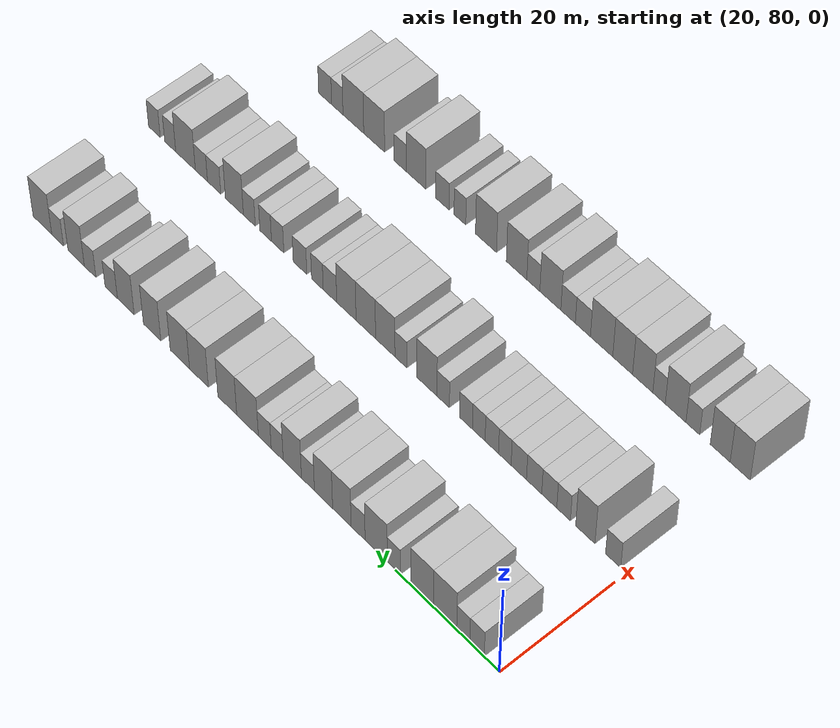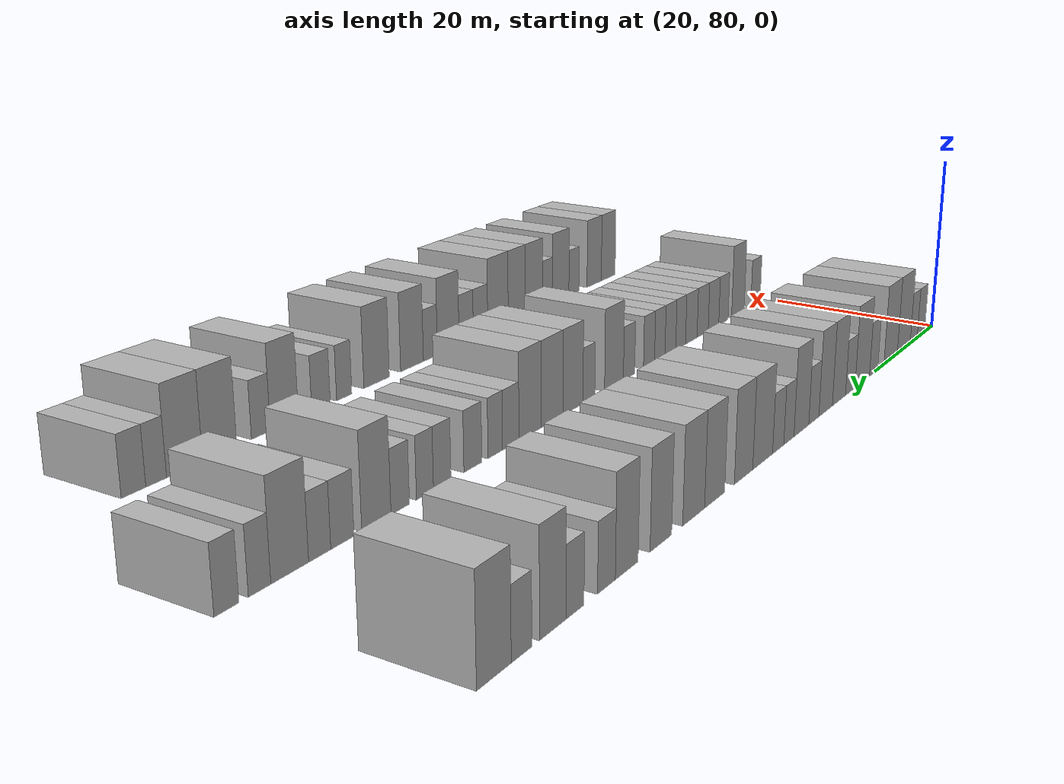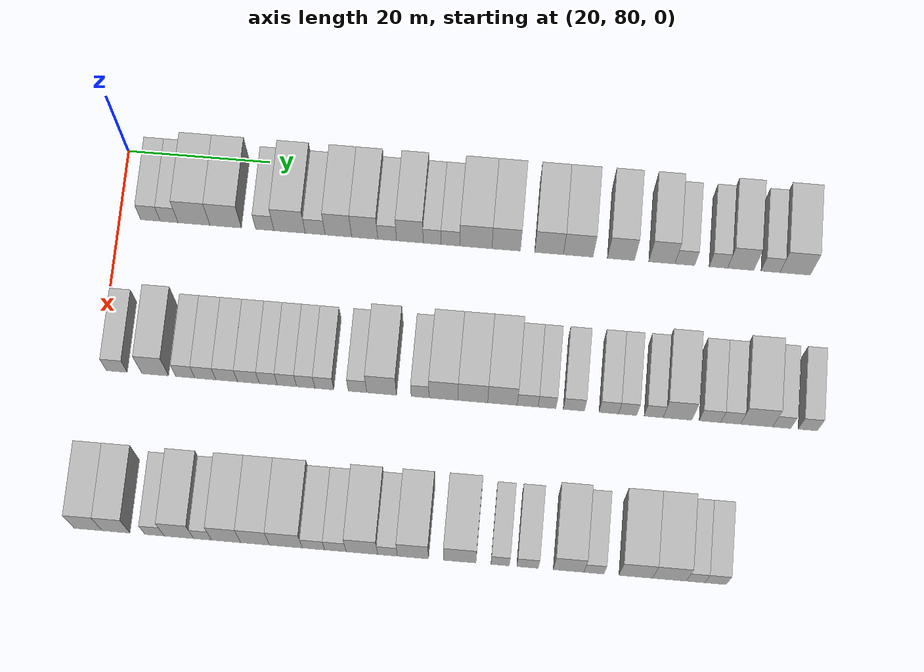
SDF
<sdf version="1.6">
 <world name="default">
  <model name="building_110">
   <static>1</static>
   <pose>25.0000 84.3498 0 0.000000 0.000000 0.000000</pose>
   <link name="link">
    <pose>0 0 3.00 0 0 0</pose>
    <collision name="collision"><geometry><box><size>10.0000 2.7486 6.0000</size></box></geometry></collision>
    <visual name="visual">
     <cast_shadows>0</cast_shadows>
     <geometry><box><size>10.0000 2.7486 6.0000</size></box></geometry>
     <material>
      <script>
       <uri>model://HANNAS_wall/materials/scripts</uri>
       <uri>model://HANNAS_wall/materials/textures</uri>
       <name>vrc/HANNAS_wall</name>
      </script>
     </material>
    </visual>
   </link>
  </model>
  <model name="building_111">
   <static>1</static>
   <pose>25.0000 86.9728 0 0.000000 0.000000 0.000000</pose>
   <link name="link">
    <pose>0 0 3.00 0 0 0</pose>
    <collision name="collision"><geometry><box><size>10.0000 2.4974 6.0000</size></box></geometry></collision>
    <visual name="visual">
     <cast_shadows>0</cast_shadows>
     <geometry><box><size>10.0000 2.4974 6.0000</size></box></geometry>
     <material>
      <script>
       <uri>model://HANNAS_wall/materials/scripts</uri>
       <uri>model://HANNAS_wall/materials/textures</uri>
       <name>vrc/HANNAS_wall</name>
      </script>
     </material>
    </visual>
   </link>
  </model>
  <model name="building_112">
   <static>1</static>
   <pose>25.0000 90.4546 0 0.000000 0.000000 0.000000</pose>
   <link name="link">
    <pose>0 0 4.50 0 0 0</pose>
    <collision name="collision"><geometry><box><size>10.0000 4.4662 9.0000</size></box></geometry></collision>
    <visual name="visual">
     <cast_shadows>0</cast_shadows>
     <geometry><box><size>10.0000 4.4662 9.0000</size></box></geometry>
     <material>
      <script>
       <uri>model://HANNAS_wall/materials/scripts</uri>
       <uri>model://HANNAS_wall/materials/textures</uri>
       <name>vrc/HANNAS_wall</name>
      </script>
     </material>
    </visual>
   </link>
  </model>
  <model name="building_113">
   <static>1</static>
   <pose>25.0000 94.8937 0 0.000000 0.000000 0.000000</pose>
   <link name="link">
    <pose>0 0 4.50 0 0 0</pose>
    <collision name="collision"><geometry><box><size>10.0000 4.4118 9.0000</size></box></geometry></collision>
    <visual name="visual">
     <cast_shadows>0</cast_shadows>
     <geometry><box><size>10.0000 4.4118 9.0000</size></box></geometry>
     <material>
      <script>
       <uri>model://HANNAS_wall/materials/scripts</uri>
       <uri>model://HANNAS_wall/materials/textures</uri>
       <name>vrc/HANNAS_wall</name>
      </script>
     </material>
    </visual>
   </link>
  </model>
  <model name="building_114">
   <static>1</static>
   <pose>25.0000 100.3810 0 0.000000 0.000000 0.000000</pose>
   <link name="link">
    <pose>0 0 3.00 0 0 0</pose>
    <collision name="collision"><geometry><box><size>10.0000 2.5627 6.0000</size></box></geometry></collision>
    <visual name="visual">
     <cast_shadows>0</cast_shadows>
     <geometry><box><size>10.0000 2.5627 6.0000</size></box></geometry>
     <material>
      <script>
       <uri>model://HANNAS_wall/materials/scripts</uri>
       <uri>model://HANNAS_wall/materials/textures</uri>
       <name>vrc/HANNAS_wall</name>
      </script>
     </material>
    </visual>
   </link>
  </model>
  <model name="building_115">
   <static>1</static>
   <pose>25.0000 103.8504 0 0.000000 0.000000 0.000000</pose>
   <link name="link">
    <pose>0 0 4.50 0 0 0</pose>
    <collision name="collision"><geometry><box><size>10.0000 4.3762 9.0000</size></box></geometry></collision>
    <visual name="visual">
     <cast_shadows>0</cast_shadows>
     <geometry><box><size>10.0000 4.3762 9.0000</size></box></geometry>
     <material>
      <script>
       <uri>model://HANNAS_wall/materials/scripts</uri>
       <uri>model://HANNAS_wall/materials/textures</uri>
       <name>vrc/HANNAS_wall</name>
      </script>
     </material>
    </visual>
   </link>
  </model>
  <model name="building_116">
   <static>1</static>
   <pose>25.0000 107.4264 0 0.000000 0.000000 0.000000</pose>
   <link name="link">
    <pose>0 0 3.00 0 0 0</pose>
    <collision name="collision"><geometry><box><size>10.0000 2.7757 6.0000</size></box></geometry></collision>
    <visual name="visual">
     <cast_shadows>0</cast_shadows>
     <geometry><box><size>10.0000 2.7757 6.0000</size></box></geometry>
     <material>
      <script>
       <uri>model://HANNAS_wall/materials/scripts</uri>
       <uri>model://HANNAS_wall/materials/textures</uri>
       <name>vrc/HANNAS_wall</name>
      </script>
     </material>
    </visual>
   </link>
  </model>
  <model name="building_117">
   <static>1</static>
   <pose>25.0000 110.6627 0 0.000000 0.000000 0.000000</pose>
   <link name="link">
    <pose>0 0 4.50 0 0 0</pose>
    <collision name="collision"><geometry><box><size>10.0000 3.6969 9.0000</size></box></geometry></collision>
    <visual name="visual">
     <cast_shadows>0</cast_shadows>
     <geometry><box><size>10.0000 3.6969 9.0000</size></box></geometry>
     <material>
      <script>
       <uri>model://HANNAS_wall/materials/scripts</uri>
       <uri>model://HANNAS_wall/materials/textures</uri>
       <name>vrc/HANNAS_wall</name>
      </script>
     </material>
    </visual>
   </link>
  </model>
  <model name="building_118">
   <static>1</static>
   <pose>25.0000 114.3359 0 0.000000 0.000000 0.000000</pose>
   <link name="link">
    <pose>0 0 4.50 0 0 0</pose>
    <collision name="collision"><geometry><box><size>10.0000 3.6496 9.0000</size></box></geometry></collision>
    <visual name="visual">
     <cast_shadows>0</cast_shadows>
     <geometry><box><size>10.0000 3.6496 9.0000</size></box></geometry>
     <material>
      <script>
       <uri>model://HANNAS_wall/materials/scripts</uri>
       <uri>model://HANNAS_wall/materials/textures</uri>
       <name>vrc/HANNAS_wall</name>
      </script>
     </material>
    </visual>
   </link>
  </model>
  <model name="building_119">
   <static>1</static>
   <pose>25.0000 117.4732 0 0.000000 0.000000 0.000000</pose>
   <link name="link">
    <pose>0 0 3.00 0 0 0</pose>
    <collision name="collision"><geometry><box><size>10.0000 2.6251 6.0000</size></box></geometry></collision>
    <visual name="visual">
     <cast_shadows>0</cast_shadows>
     <geometry><box><size>10.0000 2.6251 6.0000</size></box></geometry>
     <material>
      <script>
       <uri>model://HANNAS_wall/materials/scripts</uri>
       <uri>model://HANNAS_wall/materials/textures</uri>
       <name>vrc/HANNAS_wall</name>
      </script>
     </material>
    </visual>
   </link>
  </model>
  <model name="building_120">
   <static>1</static>
   <pose>25.0000 120.6434 0 0.000000 0.000000 0.000000</pose>
   <link name="link">
    <pose>0 0 4.50 0 0 0</pose>
    <collision name="collision"><geometry><box><size>10.0000 3.7152 9.0000</size></box></geometry></collision>
    <visual name="visual">
     <cast_shadows>0</cast_shadows>
     <geometry><box><size>10.0000 3.7152 9.0000</size></box></geometry>
     <material>
      <script>
       <uri>model://HANNAS_wall/materials/scripts</uri>
       <uri>model://HANNAS_wall/materials/textures</uri>
       <name>vrc/HANNAS_wall</name>
      </script>
     </material>
    </visual>
   </link>
  </model>
  <model name="building_121">
   <static>1</static>
   <pose>25.0000 123.7357 0 0.000000 0.000000 0.000000</pose>
   <link name="link">
    <pose>0 0 3.00 0 0 0</pose>
    <collision name="collision"><geometry><box><size>10.0000 2.4694 6.0000</size></box></geometry></collision>
    <visual name="visual">
     <cast_shadows>0</cast_shadows>
     <geometry><box><size>10.0000 2.4694 6.0000</size></box></geometry>
     <material>
      <script>
       <uri>model://HANNAS_wall/materials/scripts</uri>
       <uri>model://HANNAS_wall/materials/textures</uri>
       <name>vrc/HANNAS_wall</name>
      </script>
     </material>
    </visual>
   </link>
  </model>
  <model name="building_122">
   <static>1</static>
   <pose>25.0000 126.2883 0 0.000000 0.000000 0.000000</pose>
   <link name="link">
    <pose>0 0 3.00 0 0 0</pose>
    <collision name="collision"><geometry><box><size>10.0000 2.6357 6.0000</size></box></geometry></collision>
    <visual name="visual">
     <cast_shadows>0</cast_shadows>
     <geometry><box><size>10.0000 2.6357 6.0000</size></box></geometry>
     <material>
      <script>
       <uri>model://HANNAS_wall/materials/scripts</uri>
       <uri>model://HANNAS_wall/materials/textures</uri>
       <name>vrc/HANNAS_wall</name>
      </script>
     </material>
    </visual>
   </link>
  </model>
  <model name="building_123">
   <static>1</static>
   <pose>25.0000 129.8444 0 0.000000 0.000000 0.000000</pose>
   <link name="link">
    <pose>0 0 4.50 0 0 0</pose>
    <collision name="collision"><geometry><box><size>10.0000 4.4765 9.0000</size></box></geometry></collision>
    <visual name="visual">
     <cast_shadows>0</cast_shadows>
     <geometry><box><size>10.0000 4.4765 9.0000</size></box></geometry>
     <material>
      <script>
       <uri>model://HANNAS_wall/materials/scripts</uri>
       <uri>model://HANNAS_wall/materials/textures</uri>
       <name>vrc/HANNAS_wall</name>
      </script>
     </material>
    </visual>
   </link>
  </model>
  <model name="building_124">
   <static>1</static>
   <pose>25.0000 134.0527 0 0.000000 0.000000 0.000000</pose>
   <link name="link">
    <pose>0 0 4.50 0 0 0</pose>
    <collision name="collision"><geometry><box><size>10.0000 3.9402 9.0000</size></box></geometry></collision>
    <visual name="visual">
     <cast_shadows>0</cast_shadows>
     <geometry><box><size>10.0000 3.9402 9.0000</size></box></geometry>
     <material>
      <script>
       <uri>model://HANNAS_wall/materials/scripts</uri>
       <uri>model://HANNAS_wall/materials/textures</uri>
       <name>vrc/HANNAS_wall</name>
      </script>
     </material>
    </visual>
   </link>
  </model>
  <model name="building_125">
   <static>1</static>
   <pose>25.0000 140.0125 0 0.000000 0.000000 0.000000</pose>
   <link name="link">
    <pose>0 0 4.50 0 0 0</pose>
    <collision name="collision"><geometry><box><size>10.0000 3.9793 9.0000</size></box></geometry></collision>
    <visual name="visual">
     <cast_shadows>0</cast_shadows>
     <geometry><box><size>10.0000 3.9793 9.0000</size></box></geometry>
     <material>
      <script>
       <uri>model://HANNAS_wall/materials/scripts</uri>
       <uri>model://HANNAS_wall/materials/textures</uri>
       <name>vrc/HANNAS_wall</name>
      </script>
     </material>
    </visual>
   </link>
  </model>
  <model name="building_126">
   <static>1</static>
   <pose>25.0000 144.0633 0 0.000000 0.000000 0.000000</pose>
   <link name="link">
    <pose>0 0 4.50 0 0 0</pose>
    <collision name="collision"><geometry><box><size>10.0000 4.1224 9.0000</size></box></geometry></collision>
    <visual name="visual">
     <cast_shadows>0</cast_shadows>
     <geometry><box><size>10.0000 4.1224 9.0000</size></box></geometry>
     <material>
      <script>
       <uri>model://HANNAS_wall/materials/scripts</uri>
       <uri>model://HANNAS_wall/materials/textures</uri>
       <name>vrc/HANNAS_wall</name>
      </script>
     </material>
    </visual>
   </link>
  </model>
  <model name="building_127">
   <static>1</static>
   <pose>25.0000 149.9995 0 0.000000 0.000000 0.000000</pose>
   <link name="link">
    <pose>0 0 4.50 0 0 0</pose>
    <collision name="collision"><geometry><box><size>10.0000 3.7500 9.0000</size></box></geometry></collision>
    <visual name="visual">
     <cast_shadows>0</cast_shadows>
     <geometry><box><size>10.0000 3.7500 9.0000</size></box></geometry>
     <material>
      <script>
       <uri>model://HANNAS_wall/materials/scripts</uri>
       <uri>model://HANNAS_wall/materials/textures</uri>
       <name>vrc/HANNAS_wall</name>
      </script>
     </material>
    </visual>
   </link>
  </model>
  <model name="building_128">
   <static>1</static>
   <pose>25.0000 155.6992 0 0.000000 0.000000 0.000000</pose>
   <link name="link">
    <pose>0 0 4.50 0 0 0</pose>
    <collision name="collision"><geometry><box><size>10.0000 3.6494 9.0000</size></box></geometry></collision>
    <visual name="visual">
     <cast_shadows>0</cast_shadows>
     <geometry><box><size>10.0000 3.6494 9.0000</size></box></geometry>
     <material>
      <script>
       <uri>model://HANNAS_wall/materials/scripts</uri>
       <uri>model://HANNAS_wall/materials/textures</uri>
       <name>vrc/HANNAS_wall</name>
      </script>
     </material>
    </visual>
   </link>
  </model>
  <model name="building_129">
   <static>1</static>
   <pose>25.0000 158.8847 0 0.000000 0.000000 0.000000</pose>
   <link name="link">
    <pose>0 0 3.00 0 0 0</pose>
    <collision name="collision"><geometry><box><size>10.0000 2.7216 6.0000</size></box></geometry></collision>
    <visual name="visual">
     <cast_shadows>0</cast_shadows>
     <geometry><box><size>10.0000 2.7216 6.0000</size></box></geometry>
     <material>
      <script>
       <uri>model://HANNAS_wall/materials/scripts</uri>
       <uri>model://HANNAS_wall/materials/textures</uri>
       <name>vrc/HANNAS_wall</name>
      </script>
     </material>
    </visual>
   </link>
  </model>
  <model name="building_130">
   <static>1</static>
   <pose>25.0000 163.5265 0 0.000000 0.000000 0.000000</pose>
   <link name="link">
    <pose>0 0 3.00 0 0 0</pose>
    <collision name="collision"><geometry><box><size>10.0000 2.5621 6.0000</size></box></geometry></collision>
    <visual name="visual">
     <cast_shadows>0</cast_shadows>
     <geometry><box><size>10.0000 2.5621 6.0000</size></box></geometry>
     <material>
      <script>
       <uri>model://HANNAS_wall/materials/scripts</uri>
       <uri>model://HANNAS_wall/materials/textures</uri>
       <name>vrc/HANNAS_wall</name>
      </script>
     </material>
    </visual>
   </link>
  </model>
  <model name="building_131">
   <static>1</static>
   <pose>25.0000 166.6213 0 0.000000 0.000000 0.000000</pose>
   <link name="link">
    <pose>0 0 4.50 0 0 0</pose>
    <collision name="collision"><geometry><box><size>10.0000 3.6275 9.0000</size></box></geometry></collision>
    <visual name="visual">
     <cast_shadows>0</cast_shadows>
     <geometry><box><size>10.0000 3.6275 9.0000</size></box></geometry>
     <material>
      <script>
       <uri>model://HANNAS_wall/materials/scripts</uri>
       <uri>model://HANNAS_wall/materials/textures</uri>
       <name>vrc/HANNAS_wall</name>
      </script>
     </material>
    </visual>
   </link>
  </model>
  <model name="building_132">
   <static>1</static>
   <pose>25.0000 170.7462 0 0.000000 0.000000 0.000000</pose>
   <link name="link">
    <pose>0 0 3.00 0 0 0</pose>
    <collision name="collision"><geometry><box><size>10.0000 2.6222 6.0000</size></box></geometry></collision>
    <visual name="visual">
     <cast_shadows>0</cast_shadows>
     <geometry><box><size>10.0000 2.6222 6.0000</size></box></geometry>
     <material>
      <script>
       <uri>model://HANNAS_wall/materials/scripts</uri>
       <uri>model://HANNAS_wall/materials/textures</uri>
       <name>vrc/HANNAS_wall</name>
      </script>
     </material>
    </visual>
   </link>
  </model>
  <model name="building_133">
   <static>1</static>
   <pose>25.0000 174.1578 0 0.000000 0.000000 0.000000</pose>
   <link name="link">
    <pose>0 0 4.50 0 0 0</pose>
    <collision name="collision"><geometry><box><size>10.0000 4.2010 9.0000</size></box></geometry></collision>
    <visual name="visual">
     <cast_shadows>0</cast_shadows>
     <geometry><box><size>10.0000 4.2010 9.0000</size></box></geometry>
     <material>
      <script>
       <uri>model://HANNAS_wall/materials/scripts</uri>
       <uri>model://HANNAS_wall/materials/textures</uri>
       <name>vrc/HANNAS_wall</name>
      </script>
     </material>
    </visual>
   </link>
  </model>
  <model name="building_282">
   <static>1</static>
   <pose>47.0000 82.5187 0 0.000000 0.000000 0.000000</pose>
   <link name="link">
    <pose>0 0 3.00 0 0 0</pose>
    <collision name="collision"><geometry><box><size>10.0000 2.8569 6.0000</size></box></geometry></collision>
    <visual name="visual">
     <cast_shadows>0</cast_shadows>
     <geometry><box><size>10.0000 2.8569 6.0000</size></box></geometry>
     <material>
      <script>
       <uri>model://HANNAS_wall/materials/scripts</uri>
       <uri>model://HANNAS_wall/materials/textures</uri>
       <name>vrc/HANNAS_wall</name>
      </script>
     </material>
    </visual>
   </link>
  </model>
  <model name="building_283">
   <static>1</static>
   <pose>47.0000 87.7816 0 0.000000 0.000000 0.000000</pose>
   <link name="link">
    <pose>0 0 4.50 0 0 0</pose>
    <collision name="collision"><geometry><box><size>10.0000 3.6690 9.0000</size></box></geometry></collision>
    <visual name="visual">
     <cast_shadows>0</cast_shadows>
     <geometry><box><size>10.0000 3.6690 9.0000</size></box></geometry>
     <material>
      <script>
       <uri>model://HANNAS_wall/materials/scripts</uri>
       <uri>model://HANNAS_wall/materials/textures</uri>
       <name>vrc/HANNAS_wall</name>
      </script>
     </material>
    </visual>
   </link>
  </model>
  <model name="building_284">
   <static>1</static>
   <pose>47.0000 91.9231 0 0.000000 0.000000 0.000000</pose>
   <link name="link">
    <pose>0 0 3.00 0 0 0</pose>
    <collision name="collision"><geometry><box><size>10.0000 2.6141 6.0000</size></box></geometry></collision>
    <visual name="visual">
     <cast_shadows>0</cast_shadows>
     <geometry><box><size>10.0000 2.6141 6.0000</size></box></geometry>
     <material>
      <script>
       <uri>model://HANNAS_wall/materials/scripts</uri>
       <uri>model://HANNAS_wall/materials/textures</uri>
       <name>vrc/HANNAS_wall</name>
      </script>
     </material>
    </visual>
   </link>
  </model>
  <model name="building_285">
   <static>1</static>
   <pose>47.0000 94.6770 0 0.000000 0.000000 0.000000</pose>
   <link name="link">
    <pose>0 0 3.00 0 0 0</pose>
    <collision name="collision"><geometry><box><size>10.0000 2.8936 6.0000</size></box></geometry></collision>
    <visual name="visual">
     <cast_shadows>0</cast_shadows>
     <geometry><box><size>10.0000 2.8936 6.0000</size></box></geometry>
     <material>
      <script>
       <uri>model://HANNAS_wall/materials/scripts</uri>
       <uri>model://HANNAS_wall/materials/textures</uri>
       <name>vrc/HANNAS_wall</name>
      </script>
     </material>
    </visual>
   </link>
  </model>
  <model name="building_286">
   <static>1</static>
   <pose>47.0000 97.6054 0 0.000000 0.000000 0.000000</pose>
   <link name="link">
    <pose>0 0 3.00 0 0 0</pose>
    <collision name="collision"><geometry><box><size>10.0000 2.9633 6.0000</size></box></geometry></collision>
    <visual name="visual">
     <cast_shadows>0</cast_shadows>
     <geometry><box><size>10.0000 2.9633 6.0000</size></box></geometry>
     <material>
      <script>
       <uri>model://HANNAS_wall/materials/scripts</uri>
       <uri>model://HANNAS_wall/materials/textures</uri>
       <name>vrc/HANNAS_wall</name>
      </script>
     </material>
    </visual>
   </link>
  </model>
  <model name="building_287">
   <static>1</static>
   <pose>47.0000 100.5819 0 0.000000 0.000000 0.000000</pose>
   <link name="link">
    <pose>0 0 3.00 0 0 0</pose>
    <collision name="collision"><geometry><box><size>10.0000 2.9896 6.0000</size></box></geometry></collision>
    <visual name="visual">
     <cast_shadows>0</cast_shadows>
     <geometry><box><size>10.0000 2.9896 6.0000</size></box></geometry>
     <material>
      <script>
       <uri>model://HANNAS_wall/materials/scripts</uri>
       <uri>model://HANNAS_wall/materials/textures</uri>
       <name>vrc/HANNAS_wall</name>
      </script>
     </material>
    </visual>
   </link>
  </model>
  <model name="building_288">
   <static>1</static>
   <pose>47.0000 103.3158 0 0.000000 0.000000 0.000000</pose>
   <link name="link">
    <pose>0 0 3.00 0 0 0</pose>
    <collision name="collision"><geometry><box><size>10.0000 2.4782 6.0000</size></box></geometry></collision>
    <visual name="visual">
     <cast_shadows>0</cast_shadows>
     <geometry><box><size>10.0000 2.4782 6.0000</size></box></geometry>
     <material>
      <script>
       <uri>model://HANNAS_wall/materials/scripts</uri>
       <uri>model://HANNAS_wall/materials/textures</uri>
       <name>vrc/HANNAS_wall</name>
      </script>
     </material>
    </visual>
   </link>
  </model>
  <model name="building_289">
   <static>1</static>
   <pose>47.0000 105.8739 0 0.000000 0.000000 0.000000</pose>
   <link name="link">
    <pose>0 0 3.00 0 0 0</pose>
    <collision name="collision"><geometry><box><size>10.0000 2.6379 6.0000</size></box></geometry></collision>
    <visual name="visual">
     <cast_shadows>0</cast_shadows>
     <geometry><box><size>10.0000 2.6379 6.0000</size></box></geometry>
     <material>
      <script>
       <uri>model://HANNAS_wall/materials/scripts</uri>
       <uri>model://HANNAS_wall/materials/textures</uri>
       <name>vrc/HANNAS_wall</name>
      </script>
     </material>
    </visual>
   </link>
  </model>
  <model name="building_290">
   <static>1</static>
   <pose>47.0000 108.4440 0 0.000000 0.000000 0.000000</pose>
   <link name="link">
    <pose>0 0 3.00 0 0 0</pose>
    <collision name="collision"><geometry><box><size>10.0000 2.5023 6.0000</size></box></geometry></collision>
    <visual name="visual">
     <cast_shadows>0</cast_shadows>
     <geometry><box><size>10.0000 2.5023 6.0000</size></box></geometry>
     <material>
      <script>
       <uri>model://HANNAS_wall/materials/scripts</uri>
       <uri>model://HANNAS_wall/materials/textures</uri>
       <name>vrc/HANNAS_wall</name>
      </script>
     </material>
    </visual>
   </link>
  </model>
  <model name="building_291">
   <static>1</static>
   <pose>47.0000 110.9871 0 0.000000 0.000000 0.000000</pose>
   <link name="link">
    <pose>0 0 3.00 0 0 0</pose>
    <collision name="collision"><geometry><box><size>10.0000 2.5840 6.0000</size></box></geometry></collision>
    <visual name="visual">
     <cast_shadows>0</cast_shadows>
     <geometry><box><size>10.0000 2.5840 6.0000</size></box></geometry>
     <material>
      <script>
       <uri>model://HANNAS_wall/materials/scripts</uri>
       <uri>model://HANNAS_wall/materials/textures</uri>
       <name>vrc/HANNAS_wall</name>
      </script>
     </material>
    </visual>
   </link>
  </model>
  <model name="building_292">
   <static>1</static>
   <pose>47.0000 115.5350 0 0.000000 0.000000 0.000000</pose>
   <link name="link">
    <pose>0 0 3.00 0 0 0</pose>
    <collision name="collision"><geometry><box><size>10.0000 2.5118 6.0000</size></box></geometry></collision>
    <visual name="visual">
     <cast_shadows>0</cast_shadows>
     <geometry><box><size>10.0000 2.5118 6.0000</size></box></geometry>
     <material>
      <script>
       <uri>model://HANNAS_wall/materials/scripts</uri>
       <uri>model://HANNAS_wall/materials/textures</uri>
       <name>vrc/HANNAS_wall</name>
      </script>
     </material>
    </visual>
   </link>
  </model>
  <model name="building_293">
   <static>1</static>
   <pose>47.0000 118.8220 0 0.000000 0.000000 0.000000</pose>
   <link name="link">
    <pose>0 0 4.50 0 0 0</pose>
    <collision name="collision"><geometry><box><size>10.0000 4.0622 9.0000</size></box></geometry></collision>
    <visual name="visual">
     <cast_shadows>0</cast_shadows>
     <geometry><box><size>10.0000 4.0622 9.0000</size></box></geometry>
     <material>
      <script>
       <uri>model://HANNAS_wall/materials/scripts</uri>
       <uri>model://HANNAS_wall/materials/textures</uri>
       <name>vrc/HANNAS_wall</name>
      </script>
     </material>
    </visual>
   </link>
  </model>
  <model name="building_294">
   <static>1</static>
   <pose>47.0000 124.0700 0 0.000000 0.000000 0.000000</pose>
   <link name="link">
    <pose>0 0 3.00 0 0 0</pose>
    <collision name="collision"><geometry><box><size>10.0000 2.4339 6.0000</size></box></geometry></collision>
    <visual name="visual">
     <cast_shadows>0</cast_shadows>
     <geometry><box><size>10.0000 2.4339 6.0000</size></box></geometry>
     <material>
      <script>
       <uri>model://HANNAS_wall/materials/scripts</uri>
       <uri>model://HANNAS_wall/materials/textures</uri>
       <name>vrc/HANNAS_wall</name>
      </script>
     </material>
    </visual>
   </link>
  </model>
  <model name="building_295">
   <static>1</static>
   <pose>47.0000 127.2721 0 0.000000 0.000000 0.000000</pose>
   <link name="link">
    <pose>0 0 4.50 0 0 0</pose>
    <collision name="collision"><geometry><box><size>10.0000 3.9702 9.0000</size></box></geometry></collision>
    <visual name="visual">
     <cast_shadows>0</cast_shadows>
     <geometry><box><size>10.0000 3.9702 9.0000</size></box></geometry>
     <material>
      <script>
       <uri>model://HANNAS_wall/materials/scripts</uri>
       <uri>model://HANNAS_wall/materials/textures</uri>
       <name>vrc/HANNAS_wall</name>
      </script>
     </material>
    </visual>
   </link>
  </model>
  <model name="building_296">
   <static>1</static>
   <pose>47.0000 131.2733 0 0.000000 0.000000 0.000000</pose>
   <link name="link">
    <pose>0 0 4.50 0 0 0</pose>
    <collision name="collision"><geometry><box><size>10.0000 4.0322 9.0000</size></box></geometry></collision>
    <visual name="visual">
     <cast_shadows>0</cast_shadows>
     <geometry><box><size>10.0000 4.0322 9.0000</size></box></geometry>
     <material>
      <script>
       <uri>model://HANNAS_wall/materials/scripts</uri>
       <uri>model://HANNAS_wall/materials/textures</uri>
       <name>vrc/HANNAS_wall</name>
      </script>
     </material>
    </visual>
   </link>
  </model>
  <model name="building_297">
   <static>1</static>
   <pose>47.0000 135.3004 0 0.000000 0.000000 0.000000</pose>
   <link name="link">
    <pose>0 0 4.50 0 0 0</pose>
    <collision name="collision"><geometry><box><size>10.0000 4.0221 9.0000</size></box></geometry></collision>
    <visual name="visual">
     <cast_shadows>0</cast_shadows>
     <geometry><box><size>10.0000 4.0221 9.0000</size></box></geometry>
     <material>
      <script>
       <uri>model://HANNAS_wall/materials/scripts</uri>
       <uri>model://HANNAS_wall/materials/textures</uri>
       <name>vrc/HANNAS_wall</name>
      </script>
     </material>
    </visual>
   </link>
  </model>
  <model name="building_298">
   <static>1</static>
   <pose>47.0000 138.7276 0 0.000000 0.000000 0.000000</pose>
   <link name="link">
    <pose>0 0 3.00 0 0 0</pose>
    <collision name="collision"><geometry><box><size>10.0000 2.8322 6.0000</size></box></geometry></collision>
    <visual name="visual">
     <cast_shadows>0</cast_shadows>
     <geometry><box><size>10.0000 2.8322 6.0000</size></box></geometry>
     <material>
      <script>
       <uri>model://HANNAS_wall/materials/scripts</uri>
       <uri>model://HANNAS_wall/materials/textures</uri>
       <name>vrc/HANNAS_wall</name>
      </script>
     </material>
    </visual>
   </link>
  </model>
  <model name="building_299">
   <static>1</static>
   <pose>47.0000 141.3668 0 0.000000 0.000000 0.000000</pose>
   <link name="link">
    <pose>0 0 3.00 0 0 0</pose>
    <collision name="collision"><geometry><box><size>10.0000 2.4463 6.0000</size></box></geometry></collision>
    <visual name="visual">
     <cast_shadows>0</cast_shadows>
     <geometry><box><size>10.0000 2.4463 6.0000</size></box></geometry>
     <material>
      <script>
       <uri>model://HANNAS_wall/materials/scripts</uri>
       <uri>model://HANNAS_wall/materials/textures</uri>
       <name>vrc/HANNAS_wall</name>
      </script>
     </material>
    </visual>
   </link>
  </model>
  <model name="building_300">
   <static>1</static>
   <pose>47.0000 145.0277 0 0.000000 0.000000 0.000000</pose>
   <link name="link">
    <pose>0 0 3.00 0 0 0</pose>
    <collision name="collision"><geometry><box><size>10.0000 2.8755 6.0000</size></box></geometry></collision>
    <visual name="visual">
     <cast_shadows>0</cast_shadows>
     <geometry><box><size>10.0000 2.8755 6.0000</size></box></geometry>
     <material>
      <script>
       <uri>model://HANNAS_wall/materials/scripts</uri>
       <uri>model://HANNAS_wall/materials/textures</uri>
       <name>vrc/HANNAS_wall</name>
      </script>
     </material>
    </visual>
   </link>
  </model>
  <model name="building_301">
   <static>1</static>
   <pose>47.0000 149.7869 0 0.000000 0.000000 0.000000</pose>
   <link name="link">
    <pose>0 0 3.00 0 0 0</pose>
    <collision name="collision"><geometry><box><size>10.0000 2.6430 6.0000</size></box></geometry></collision>
    <visual name="visual">
     <cast_shadows>0</cast_shadows>
     <geometry><box><size>10.0000 2.6430 6.0000</size></box></geometry>
     <material>
      <script>
       <uri>model://HANNAS_wall/materials/scripts</uri>
       <uri>model://HANNAS_wall/materials/textures</uri>
       <name>vrc/HANNAS_wall</name>
      </script>
     </material>
    </visual>
   </link>
  </model>
  <model name="building_302">
   <static>1</static>
   <pose>47.0000 152.3531 0 0.000000 0.000000 0.000000</pose>
   <link name="link">
    <pose>0 0 3.00 0 0 0</pose>
    <collision name="collision"><geometry><box><size>10.0000 2.4892 6.0000</size></box></geometry></collision>
    <visual name="visual">
     <cast_shadows>0</cast_shadows>
     <geometry><box><size>10.0000 2.4892 6.0000</size></box></geometry>
     <material>
      <script>
       <uri>model://HANNAS_wall/materials/scripts</uri>
       <uri>model://HANNAS_wall/materials/textures</uri>
       <name>vrc/HANNAS_wall</name>
      </script>
     </material>
    </visual>
   </link>
  </model>
  <model name="building_303">
   <static>1</static>
   <pose>47.0000 155.8826 0 0.000000 0.000000 0.000000</pose>
   <link name="link">
    <pose>0 0 3.00 0 0 0</pose>
    <collision name="collision"><geometry><box><size>10.0000 2.5697 6.0000</size></box></geometry></collision>
    <visual name="visual">
     <cast_shadows>0</cast_shadows>
     <geometry><box><size>10.0000 2.5697 6.0000</size></box></geometry>
     <material>
      <script>
       <uri>model://HANNAS_wall/materials/scripts</uri>
       <uri>model://HANNAS_wall/materials/textures</uri>
       <name>vrc/HANNAS_wall</name>
      </script>
     </material>
    </visual>
   </link>
  </model>
  <model name="building_304">
   <static>1</static>
   <pose>47.0000 159.1237 0 0.000000 0.000000 0.000000</pose>
   <link name="link">
    <pose>0 0 4.50 0 0 0</pose>
    <collision name="collision"><geometry><box><size>10.0000 3.9127 9.0000</size></box></geometry></collision>
    <visual name="visual">
     <cast_shadows>0</cast_shadows>
     <geometry><box><size>10.0000 3.9127 9.0000</size></box></geometry>
     <material>
      <script>
       <uri>model://HANNAS_wall/materials/scripts</uri>
       <uri>model://HANNAS_wall/materials/textures</uri>
       <name>vrc/HANNAS_wall</name>
      </script>
     </material>
    </visual>
   </link>
  </model>
  <model name="building_305">
   <static>1</static>
   <pose>47.0000 163.5399 0 0.000000 0.000000 0.000000</pose>
   <link name="link">
    <pose>0 0 3.00 0 0 0</pose>
    <collision name="collision"><geometry><box><size>10.0000 2.9198 6.0000</size></box></geometry></collision>
    <visual name="visual">
     <cast_shadows>0</cast_shadows>
     <geometry><box><size>10.0000 2.9198 6.0000</size></box></geometry>
     <material>
      <script>
       <uri>model://HANNAS_wall/materials/scripts</uri>
       <uri>model://HANNAS_wall/materials/textures</uri>
       <name>vrc/HANNAS_wall</name>
      </script>
     </material>
    </visual>
   </link>
  </model>
  <model name="building_306">
   <static>1</static>
   <pose>47.0000 166.3398 0 0.000000 0.000000 0.000000</pose>
   <link name="link">
    <pose>0 0 3.00 0 0 0</pose>
    <collision name="collision"><geometry><box><size>10.0000 2.6800 6.0000</size></box></geometry></collision>
    <visual name="visual">
     <cast_shadows>0</cast_shadows>
     <geometry><box><size>10.0000 2.6800 6.0000</size></box></geometry>
     <material>
      <script>
       <uri>model://HANNAS_wall/materials/scripts</uri>
       <uri>model://HANNAS_wall/materials/textures</uri>
       <name>vrc/HANNAS_wall</name>
      </script>
     </material>
    </visual>
   </link>
  </model>
  <model name="building_307">
   <static>1</static>
   <pose>47.0000 169.8573 0 0.000000 0.000000 0.000000</pose>
   <link name="link">
    <pose>0 0 4.50 0 0 0</pose>
    <collision name="collision"><geometry><box><size>10.0000 4.3549 9.0000</size></box></geometry></collision>
    <visual name="visual">
     <cast_shadows>0</cast_shadows>
     <geometry><box><size>10.0000 4.3549 9.0000</size></box></geometry>
     <material>
      <script>
       <uri>model://HANNAS_wall/materials/scripts</uri>
       <uri>model://HANNAS_wall/materials/textures</uri>
       <name>vrc/HANNAS_wall</name>
      </script>
     </material>
    </visual>
   </link>
  </model>
  <model name="building_308">
   <static>1</static>
   <pose>47.0000 173.2670 0 0.000000 0.000000 0.000000</pose>
   <link name="link">
    <pose>0 0 3.00 0 0 0</pose>
    <collision name="collision"><geometry><box><size>10.0000 2.4646 6.0000</size></box></geometry></collision>
    <visual name="visual">
     <cast_shadows>0</cast_shadows>
     <geometry><box><size>10.0000 2.4646 6.0000</size></box></geometry>
     <material>
      <script>
       <uri>model://HANNAS_wall/materials/scripts</uri>
       <uri>model://HANNAS_wall/materials/textures</uri>
       <name>vrc/HANNAS_wall</name>
      </script>
     </material>
    </visual>
   </link>
  </model>
  <model name="building_309">
   <static>1</static>
   <pose>47.0000 176.8032 0 0.000000 0.000000 0.000000</pose>
   <link name="link">
    <pose>0 0 3.00 0 0 0</pose>
    <collision name="collision"><geometry><box><size>10.0000 2.6080 6.0000</size></box></geometry></collision>
    <visual name="visual">
     <cast_shadows>0</cast_shadows>
     <geometry><box><size>10.0000 2.6080 6.0000</size></box></geometry>
     <material>
      <script>
       <uri>model://HANNAS_wall/materials/scripts</uri>
       <uri>model://HANNAS_wall/materials/textures</uri>
       <name>vrc/HANNAS_wall</name>
      </script>
     </material>
    </visual>
   </link>
  </model>
  <model name="building_481">
   <static>1</static>
   <pose>69.0000 81.5131 0 0.000000 0.000000 0.000000</pose>
   <link name="link">
    <pose>0 0 4.50 0 0 0</pose>
    <collision name="collision"><geometry><box><size>10.0000 3.7663 9.0000</size></box></geometry></collision>
    <visual name="visual">
     <cast_shadows>0</cast_shadows>
     <geometry><box><size>10.0000 3.7663 9.0000</size></box></geometry>
     <material>
      <script>
       <uri>model://HANNAS_wall/materials/scripts</uri>
       <uri>model://HANNAS_wall/materials/textures</uri>
       <name>vrc/HANNAS_wall</name>
      </script>
     </material>
    </visual>
   </link>
  </model>
  <model name="building_482">
   <static>1</static>
   <pose>69.0000 85.2738 0 0.000000 0.000000 0.000000</pose>
   <link name="link">
    <pose>0 0 4.50 0 0 0</pose>
    <collision name="collision"><geometry><box><size>10.0000 3.7550 9.0000</size></box></geometry></collision>
    <visual name="visual">
     <cast_shadows>0</cast_shadows>
     <geometry><box><size>10.0000 3.7550 9.0000</size></box></geometry>
     <material>
      <script>
       <uri>model://HANNAS_wall/materials/scripts</uri>
       <uri>model://HANNAS_wall/materials/textures</uri>
       <name>vrc/HANNAS_wall</name>
      </script>
     </material>
    </visual>
   </link>
  </model>
  <model name="building_483">
   <static>1</static>
   <pose>69.0000 90.4592 0 0.000000 0.000000 0.000000</pose>
   <link name="link">
    <pose>0 0 3.00 0 0 0</pose>
    <collision name="collision"><geometry><box><size>10.0000 2.6159 6.0000</size></box></geometry></collision>
    <visual name="visual">
     <cast_shadows>0</cast_shadows>
     <geometry><box><size>10.0000 2.6159 6.0000</size></box></geometry>
     <material>
      <script>
       <uri>model://HANNAS_wall/materials/scripts</uri>
       <uri>model://HANNAS_wall/materials/textures</uri>
       <name>vrc/HANNAS_wall</name>
      </script>
     </material>
    </visual>
   </link>
  </model>
  <model name="building_484">
   <static>1</static>
   <pose>69.0000 93.7500 0 0.000000 0.000000 0.000000</pose>
   <link name="link">
    <pose>0 0 4.50 0 0 0</pose>
    <collision name="collision"><geometry><box><size>10.0000 3.9657 9.0000</size></box></geometry></collision>
    <visual name="visual">
     <cast_shadows>0</cast_shadows>
     <geometry><box><size>10.0000 3.9657 9.0000</size></box></geometry>
     <material>
      <script>
       <uri>model://HANNAS_wall/materials/scripts</uri>
       <uri>model://HANNAS_wall/materials/textures</uri>
       <name>vrc/HANNAS_wall</name>
      </script>
     </material>
    </visual>
   </link>
  </model>
  <model name="building_485">
   <static>1</static>
   <pose>69.0000 96.9336 0 0.000000 0.000000 0.000000</pose>
   <link name="link">
    <pose>0 0 3.00 0 0 0</pose>
    <collision name="collision"><geometry><box><size>10.0000 2.4015 6.0000</size></box></geometry></collision>
    <visual name="visual">
     <cast_shadows>0</cast_shadows>
     <geometry><box><size>10.0000 2.4015 6.0000</size></box></geometry>
     <material>
      <script>
       <uri>model://HANNAS_wall/materials/scripts</uri>
       <uri>model://HANNAS_wall/materials/textures</uri>
       <name>vrc/HANNAS_wall</name>
      </script>
     </material>
    </visual>
   </link>
  </model>
  <model name="building_486">
   <static>1</static>
   <pose>69.0000 100.0954 0 0.000000 0.000000 0.000000</pose>
   <link name="link">
    <pose>0 0 4.50 0 0 0</pose>
    <collision name="collision"><geometry><box><size>10.0000 3.9221 9.0000</size></box></geometry></collision>
    <visual name="visual">
     <cast_shadows>0</cast_shadows>
     <geometry><box><size>10.0000 3.9221 9.0000</size></box></geometry>
     <material>
      <script>
       <uri>model://HANNAS_wall/materials/scripts</uri>
       <uri>model://HANNAS_wall/materials/textures</uri>
       <name>vrc/HANNAS_wall</name>
      </script>
     </material>
    </visual>
   </link>
  </model>
  <model name="building_487">
   <static>1</static>
   <pose>69.0000 103.9922 0 0.000000 0.000000 0.000000</pose>
   <link name="link">
    <pose>0 0 4.50 0 0 0</pose>
    <collision name="collision"><geometry><box><size>10.0000 3.8715 9.0000</size></box></geometry></collision>
    <visual name="visual">
     <cast_shadows>0</cast_shadows>
     <geometry><box><size>10.0000 3.8715 9.0000</size></box></geometry>
     <material>
      <script>
       <uri>model://HANNAS_wall/materials/scripts</uri>
       <uri>model://HANNAS_wall/materials/textures</uri>
       <name>vrc/HANNAS_wall</name>
      </script>
     </material>
    </visual>
   </link>
  </model>
  <model name="building_488">
   <static>1</static>
   <pose>69.0000 108.1237 0 0.000000 0.000000 0.000000</pose>
   <link name="link">
    <pose>0 0 4.50 0 0 0</pose>
    <collision name="collision"><geometry><box><size>10.0000 4.3915 9.0000</size></box></geometry></collision>
    <visual name="visual">
     <cast_shadows>0</cast_shadows>
     <geometry><box><size>10.0000 4.3915 9.0000</size></box></geometry>
     <material>
      <script>
       <uri>model://HANNAS_wall/materials/scripts</uri>
       <uri>model://HANNAS_wall/materials/textures</uri>
       <name>vrc/HANNAS_wall</name>
      </script>
     </material>
    </visual>
   </link>
  </model>
  <model name="building_489">
   <static>1</static>
   <pose>69.0000 111.8172 0 0.000000 0.000000 0.000000</pose>
   <link name="link">
    <pose>0 0 3.00 0 0 0</pose>
    <collision name="collision"><geometry><box><size>10.0000 2.9954 6.0000</size></box></geometry></collision>
    <visual name="visual">
     <cast_shadows>0</cast_shadows>
     <geometry><box><size>10.0000 2.9954 6.0000</size></box></geometry>
     <material>
      <script>
       <uri>model://HANNAS_wall/materials/scripts</uri>
       <uri>model://HANNAS_wall/materials/textures</uri>
       <name>vrc/HANNAS_wall</name>
      </script>
     </material>
    </visual>
   </link>
  </model>
  <model name="building_490">
   <static>1</static>
   <pose>69.0000 114.7504 0 0.000000 0.000000 0.000000</pose>
   <link name="link">
    <pose>0 0 3.00 0 0 0</pose>
    <collision name="collision"><geometry><box><size>10.0000 2.8711 6.0000</size></box></geometry></collision>
    <visual name="visual">
     <cast_shadows>0</cast_shadows>
     <geometry><box><size>10.0000 2.8711 6.0000</size></box></geometry>
     <material>
      <script>
       <uri>model://HANNAS_wall/materials/scripts</uri>
       <uri>model://HANNAS_wall/materials/textures</uri>
       <name>vrc/HANNAS_wall</name>
      </script>
     </material>
    </visual>
   </link>
  </model>
  <model name="building_491">
   <static>1</static>
   <pose>69.0000 118.2952 0 0.000000 0.000000 0.000000</pose>
   <link name="link">
    <pose>0 0 4.50 0 0 0</pose>
    <collision name="collision"><geometry><box><size>10.0000 4.2186 9.0000</size></box></geometry></collision>
    <visual name="visual">
     <cast_shadows>0</cast_shadows>
     <geometry><box><size>10.0000 4.2186 9.0000</size></box></geometry>
     <material>
      <script>
       <uri>model://HANNAS_wall/materials/scripts</uri>
       <uri>model://HANNAS_wall/materials/textures</uri>
       <name>vrc/HANNAS_wall</name>
      </script>
     </material>
    </visual>
   </link>
  </model>
  <model name="building_492">
   <static>1</static>
   <pose>69.0000 121.7260 0 0.000000 0.000000 0.000000</pose>
   <link name="link">
    <pose>0 0 3.00 0 0 0</pose>
    <collision name="collision"><geometry><box><size>10.0000 2.6430 6.0000</size></box></geometry></collision>
    <visual name="visual">
     <cast_shadows>0</cast_shadows>
     <geometry><box><size>10.0000 2.6430 6.0000</size></box></geometry>
     <material>
      <script>
       <uri>model://HANNAS_wall/materials/scripts</uri>
       <uri>model://HANNAS_wall/materials/textures</uri>
       <name>vrc/HANNAS_wall</name>
      </script>
     </material>
    </visual>
   </link>
  </model>
  <model name="building_493">
   <static>1</static>
   <pose>69.0000 125.1257 0 0.000000 0.000000 0.000000</pose>
   <link name="link">
    <pose>0 0 4.50 0 0 0</pose>
    <collision name="collision"><geometry><box><size>10.0000 4.1564 9.0000</size></box></geometry></collision>
    <visual name="visual">
     <cast_shadows>0</cast_shadows>
     <geometry><box><size>10.0000 4.1564 9.0000</size></box></geometry>
     <material>
      <script>
       <uri>model://HANNAS_wall/materials/scripts</uri>
       <uri>model://HANNAS_wall/materials/textures</uri>
       <name>vrc/HANNAS_wall</name>
      </script>
     </material>
    </visual>
   </link>
  </model>
  <model name="building_494">
   <static>1</static>
   <pose>69.0000 131.3698 0 0.000000 0.000000 0.000000</pose>
   <link name="link">
    <pose>0 0 4.50 0 0 0</pose>
    <collision name="collision"><geometry><box><size>10.0000 4.3318 9.0000</size></box></geometry></collision>
    <visual name="visual">
     <cast_shadows>0</cast_shadows>
     <geometry><box><size>10.0000 4.3318 9.0000</size></box></geometry>
     <material>
      <script>
       <uri>model://HANNAS_wall/materials/scripts</uri>
       <uri>model://HANNAS_wall/materials/textures</uri>
       <name>vrc/HANNAS_wall</name>
      </script>
     </material>
    </visual>
   </link>
  </model>
  <model name="building_495">
   <static>1</static>
   <pose>69.0000 136.7615 0 0.000000 0.000000 0.000000</pose>
   <link name="link">
    <pose>0 0 3.00 0 0 0</pose>
    <collision name="collision"><geometry><box><size>10.0000 2.4515 6.0000</size></box></geometry></collision>
    <visual name="visual">
     <cast_shadows>0</cast_shadows>
     <geometry><box><size>10.0000 2.4515 6.0000</size></box></geometry>
     <material>
      <script>
       <uri>model://HANNAS_wall/materials/scripts</uri>
       <uri>model://HANNAS_wall/materials/textures</uri>
       <name>vrc/HANNAS_wall</name>
      </script>
     </material>
    </visual>
   </link>
  </model>
  <model name="building_496">
   <static>1</static>
   <pose>69.0000 140.4207 0 0.000000 0.000000 0.000000</pose>
   <link name="link">
    <pose>0 0 3.00 0 0 0</pose>
    <collision name="collision"><geometry><box><size>10.0000 2.8668 6.0000</size></box></geometry></collision>
    <visual name="visual">
     <cast_shadows>0</cast_shadows>
     <geometry><box><size>10.0000 2.8668 6.0000</size></box></geometry>
     <material>
      <script>
       <uri>model://HANNAS_wall/materials/scripts</uri>
       <uri>model://HANNAS_wall/materials/textures</uri>
       <name>vrc/HANNAS_wall</name>
      </script>
     </material>
    </visual>
   </link>
  </model>
  <model name="building_497">
   <static>1</static>
   <pose>69.0000 145.9015 0 0.000000 0.000000 0.000000</pose>
   <link name="link">
    <pose>0 0 4.50 0 0 0</pose>
    <collision name="collision"><geometry><box><size>10.0000 4.0947 9.0000</size></box></geometry></collision>
    <visual name="visual">
     <cast_shadows>0</cast_shadows>
     <geometry><box><size>10.0000 4.0947 9.0000</size></box></geometry>
     <material>
      <script>
       <uri>model://HANNAS_wall/materials/scripts</uri>
       <uri>model://HANNAS_wall/materials/textures</uri>
       <name>vrc/HANNAS_wall</name>
      </script>
     </material>
    </visual>
   </link>
  </model>
  <model name="building_498">
   <static>1</static>
   <pose>69.0000 149.2787 0 0.000000 0.000000 0.000000</pose>
   <link name="link">
    <pose>0 0 3.00 0 0 0</pose>
    <collision name="collision"><geometry><box><size>10.0000 2.6597 6.0000</size></box></geometry></collision>
    <visual name="visual">
     <cast_shadows>0</cast_shadows>
     <geometry><box><size>10.0000 2.6597 6.0000</size></box></geometry>
     <material>
      <script>
       <uri>model://HANNAS_wall/materials/scripts</uri>
       <uri>model://HANNAS_wall/materials/textures</uri>
       <name>vrc/HANNAS_wall</name>
      </script>
     </material>
    </visual>
   </link>
  </model>
  <model name="building_499">
   <static>1</static>
   <pose>69.0000 154.8500 0 0.000000 0.000000 0.000000</pose>
   <link name="link">
    <pose>0 0 4.50 0 0 0</pose>
    <collision name="collision"><geometry><box><size>10.0000 4.4829 9.0000</size></box></geometry></collision>
    <visual name="visual">
     <cast_shadows>0</cast_shadows>
     <geometry><box><size>10.0000 4.4829 9.0000</size></box></geometry>
     <material>
      <script>
       <uri>model://HANNAS_wall/materials/scripts</uri>
       <uri>model://HANNAS_wall/materials/textures</uri>
       <name>vrc/HANNAS_wall</name>
      </script>
     </material>
    </visual>
   </link>
  </model>
  <model name="building_500">
   <static>1</static>
   <pose>69.0000 159.3357 0 0.000000 0.000000 0.000000</pose>
   <link name="link">
    <pose>0 0 4.50 0 0 0</pose>
    <collision name="collision"><geometry><box><size>10.0000 4.4885 9.0000</size></box></geometry></collision>
    <visual name="visual">
     <cast_shadows>0</cast_shadows>
     <geometry><box><size>10.0000 4.4885 9.0000</size></box></geometry>
     <material>
      <script>
       <uri>model://HANNAS_wall/materials/scripts</uri>
       <uri>model://HANNAS_wall/materials/textures</uri>
       <name>vrc/HANNAS_wall</name>
      </script>
     </material>
    </visual>
   </link>
  </model>
  <model name="building_501">
   <static>1</static>
   <pose>69.0000 162.8143 0 0.000000 0.000000 0.000000</pose>
   <link name="link">
    <pose>0 0 3.00 0 0 0</pose>
    <collision name="collision"><geometry><box><size>10.0000 2.4686 6.0000</size></box></geometry></collision>
    <visual name="visual">
     <cast_shadows>0</cast_shadows>
     <geometry><box><size>10.0000 2.4686 6.0000</size></box></geometry>
     <material>
      <script>
       <uri>model://HANNAS_wall/materials/scripts</uri>
       <uri>model://HANNAS_wall/materials/textures</uri>
       <name>vrc/HANNAS_wall</name>
      </script>
     </material>
    </visual>
   </link>
  </model>
  <model name="building_502">
   <static>1</static>
   <pose>69.0000 165.4678 0 0.000000 0.000000 0.000000</pose>
   <link name="link">
    <pose>0 0 3.00 0 0 0</pose>
    <collision name="collision"><geometry><box><size>10.0000 2.8384 6.0000</size></box></geometry></collision>
    <visual name="visual">
     <cast_shadows>0</cast_shadows>
     <geometry><box><size>10.0000 2.8384 6.0000</size></box></geometry>
     <material>
      <script>
       <uri>model://HANNAS_wall/materials/scripts</uri>
       <uri>model://HANNAS_wall/materials/textures</uri>
       <name>vrc/HANNAS_wall</name>
      </script>
     </material>
    </visual>
   </link>
  </model>
 </world>
</sdf>
